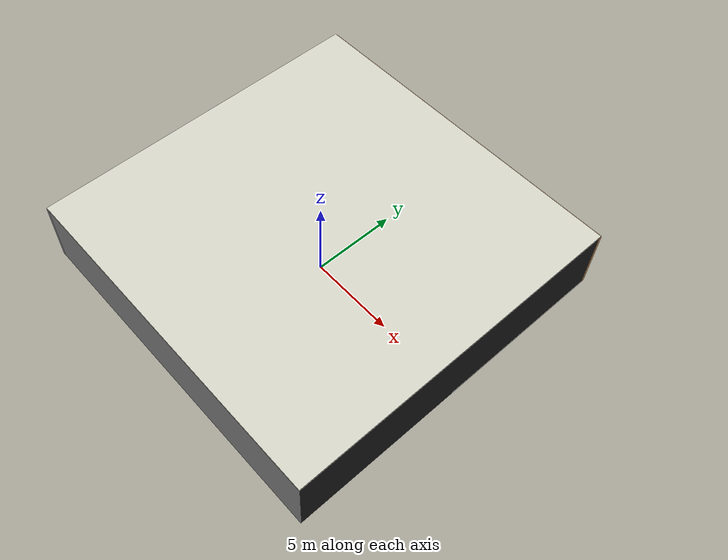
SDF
<sdf version="1.4">
 <world name="default">
  <physics type="ode">
   <max_step_size>0.001</max_step_size>
   <real_time_factor>1</real_time_factor>
   <real_time_update_rate>1000</real_time_update_rate>
   <gravity>0 0 -9.8</gravity>
  </physics>
  <scene><ambient>0.4 0.4 0.4 1</ambient><background>0.7 0.7 0.7 1</background><shadows>1</shadows></scene>
  <model name="Surrounding">
   <static>1</static>
   <link name="Ceiling">
    <collision name="Ceiling_Collision"><geometry><box><size>20 20 0.1</size></box></geometry></collision>
    <visual name="Ceiling_Visual">
     <geometry><box><size>20 20 0.1</size></box></geometry>
     <material>
      <script><uri>file://media/materials/scripts/gazebo.material</uri><name>Gazebo/PaintedWall</name></script>
     </material>
    </visual>
    <pose>0 0 4.05 0 0 0</pose>
   </link>
   <link name="Wall_South">
    <collision name="Wall_South_Collision">
     <geometry><box><size>20 0 4</size></box></geometry>
     <pose>0 0 2 0 -0 0</pose>
    </collision>
    <visual name="Wall_South_Visual">
     <pose>0 0 2 0 -0 0</pose>
     <geometry><box><size>20 0 4</size></box></geometry>
     <material>
      <script><uri>file://media/materials/scripts/gazebo.material</uri><name>Gazebo/Grey</name></script>
     </material>
    </visual>
    <velocity_decay><linear>0</linear><angular>0</angular></velocity_decay>
    <pose>0 -10 0 0 -0 0</pose>
   </link>
   <link name="Wall_East">
    <collision name="Wall_21_Collision">
     <geometry><box><size>20 0 4</size></box></geometry>
     <pose>0 0 2 0 -0 0</pose>
    </collision>
    <visual name="Wall_21_Visual">
     <pose>0 0 2 0 -0 0</pose>
     <geometry><box><size>20 0 4</size></box></geometry>
     <material>
      <script><uri>file://media/materials/scripts/gazebo.material</uri><name>Gazebo/Black</name></script>
     </material>
    </visual>
    <velocity_decay><linear>0</linear><angular>0</angular></velocity_decay>
    <pose>10 0 0 0 -0 1.5708</pose>
   </link>
   <link name="Wall_North">
    <collision name="Wall_22_Collision">
     <geometry><box><size>20 0.2 4</size></box></geometry>
     <pose>0 0 2 0 -0 0</pose>
    </collision>
    <visual name="Wall_22_Visual">
     <pose>0 0 2 0 -0 0</pose>
     <geometry><box><size>20 0.2 4</size></box></geometry>
     <material>
      <script><uri>file://media/materials/scripts/gazebo.material</uri><name>Gazebo/Wood</name></script>
     </material>
    </visual>
    <velocity_decay><linear>0</linear><angular>0</angular></velocity_decay>
    <pose>0 10 0 0 -0 0</pose>
   </link>
   <link name="Wall_West">
    <collision name="Wall_23_Collision">
     <geometry><box><size>20 0.2 4</size></box></geometry>
     <pose>0 0 2 0 -0 0</pose>
    </collision>
    <visual name="Wall_23_Visual">
     <pose>0 0 2 0 -0 0</pose>
     <geometry><box><size>20 0.2 4</size></box></geometry>
     <material>
      <script><uri>file://media/materials/scripts/gazebo.material</uri><name>Gazebo/CloudySky</name></script>
     </material>
    </visual>
    <velocity_decay><linear>0</linear><angular>0</angular></velocity_decay>
    <pose>-10 0 0 0 0 -1.5708</pose>
   </link>
   <link name="Ground_link">
    <collision name="collision">
     <pose>0 0 .05 0 -0 0</pose>
     <geometry><box><size>20 20 0.1</size></box></geometry>
    </collision>
    <visual name="visual">
     <pose>0 0 .05 0 -0 0</pose>
     <geometry><box><size>20 20 0.1</size></box></geometry>
     <material>
      <script><uri>file://media/materials/scripts/gazebo.material</uri><name>Gazebo/WhiteGlow</name></script>
     </material>
    </visual>
   </link>
   <static>1</static>
  </model>
  <spherical_coordinates>
   <surface_model>EARTH_WGS84</surface_model>
   <latitude_deg>0</latitude_deg>
   <longitude_deg>0</longitude_deg>
   <elevation>0</elevation>
   <heading_deg>0</heading_deg>
  </spherical_coordinates>
  <light name="lightball_0" type="diffuse">
   <diffuse>0.8 0.8 0.8 1</diffuse>
   <specular>0.2 0.2 0.2 1</specular>
   <attenuation>
    <range>100</range>
    <constant>0.7</constant>
    <linear>0.01</linear>
    <quadratic>0.001</quadratic>
   </attenuation>
   <direction>-0.5 0.1 -0.9</direction>
   <pose>9.76230772476 -6.5128125291 3.10662071786 0 0 0</pose>
  </light>
  <light name="lightball_1" type="diffuse">
   <diffuse>0.8 0.8 0.8 1</diffuse>
   <specular>0.2 0.2 0.2 1</specular>
   <attenuation>
    <range>100</range>
    <constant>0.7</constant>
    <linear>0.01</linear>
    <quadratic>0.001</quadratic>
   </attenuation>
   <direction>-0.5 0.1 -0.9</direction>
   <pose>-2.87059615191 -8.4118484953 2.14263626594 0 0 0</pose>
  </light>
  <light name="lightball_2" type="diffuse">
   <diffuse>0.8 0.8 0.8 1</diffuse>
   <specular>0.2 0.2 0.2 1</specular>
   <attenuation>
    <range>100</range>
    <constant>0.7</constant>
    <linear>0.01</linear>
    <quadratic>0.001</quadratic>
   </attenuation>
   <direction>-0.5 0.1 -0.9</direction>
   <pose>-8.38495642539 5.77922962794 1.33048477579 0 0 0</pose>
  </light>
  <light name="lightball_3" type="diffuse">
   <diffuse>0.8 0.8 0.8 1</diffuse>
   <specular>0.2 0.2 0.2 1</specular>
   <attenuation>
    <range>100</range>
    <constant>0.7</constant>
    <linear>0.01</linear>
    <quadratic>0.001</quadratic>
   </attenuation>
   <direction>-0.5 0.1 -0.9</direction>
   <pose>-0.769293684458 -4.58864414415 3.06371476783 0 0 0</pose>
  </light>
  <light name="lightball_4" type="diffuse">
   <diffuse>0.8 0.8 0.8 1</diffuse>
   <specular>0.2 0.2 0.2 1</specular>
   <attenuation>
    <range>100</range>
    <constant>0.7</constant>
    <linear>0.01</linear>
    <quadratic>0.001</quadratic>
   </attenuation>
   <direction>-0.5 0.1 -0.9</direction>
   <pose>-8.98619301716 -6.09142293908 2.99226030303 0 0 0</pose>
  </light>
  <light name="lightball_5" type="diffuse">
   <diffuse>0.8 0.8 0.8 1</diffuse>
   <specular>0.2 0.2 0.2 1</specular>
   <attenuation>
    <range>100</range>
    <constant>0.7</constant>
    <linear>0.01</linear>
    <quadratic>0.001</quadratic>
   </attenuation>
   <direction>-0.5 0.1 -0.9</direction>
   <pose>6.28606264016 5.172390381 3.63179261943 0 0 0</pose>
  </light>
  <light name="lightball_6" type="diffuse">
   <diffuse>0.8 0.8 0.8 1</diffuse>
   <specular>0.2 0.2 0.2 1</specular>
   <attenuation>
    <range>100</range>
    <constant>0.7</constant>
    <linear>0.01</linear>
    <quadratic>0.001</quadratic>
   </attenuation>
   <direction>-0.5 0.1 -0.9</direction>
   <pose>-9.87206662865 8.23285771388 2.18911878817 0 0 0</pose>
  </light>
  <light name="lightball_7" type="diffuse">
   <diffuse>0.8 0.8 0.8 1</diffuse>
   <specular>0.2 0.2 0.2 1</specular>
   <attenuation>
    <range>100</range>
    <constant>0.7</constant>
    <linear>0.01</linear>
    <quadratic>0.001</quadratic>
   </attenuation>
   <direction>-0.5 0.1 -0.9</direction>
   <pose>-5.39429683851 -2.72659191756 0.865230548906 0 0 0</pose>
  </light>
  <light name="lightball_8" type="diffuse">
   <diffuse>0.8 0.8 0.8 1</diffuse>
   <specular>0.2 0.2 0.2 1</specular>
   <attenuation>
    <range>100</range>
    <constant>0.7</constant>
    <linear>0.01</linear>
    <quadratic>0.001</quadratic>
   </attenuation>
   <direction>-0.5 0.1 -0.9</direction>
   <pose>-6.38866931833 -0.99157999484 2.50647013045 0 0 0</pose>
  </light>
  <light name="lightball_9" type="diffuse">
   <diffuse>0.8 0.8 0.8 1</diffuse>
   <specular>0.2 0.2 0.2 1</specular>
   <attenuation>
    <range>100</range>
    <constant>0.7</constant>
    <linear>0.01</linear>
    <quadratic>0.001</quadratic>
   </attenuation>
   <direction>-0.5 0.1 -0.9</direction>
   <pose>3.4309597491 8.31868491751 2.74169819379 0 0 0</pose>
  </light>
  <light name="lightball_10" type="diffuse">
   <diffuse>0.8 0.8 0.8 1</diffuse>
   <specular>0.2 0.2 0.2 1</specular>
   <attenuation>
    <range>100</range>
    <constant>0.7</constant>
    <linear>0.01</linear>
    <quadratic>0.001</quadratic>
   </attenuation>
   <direction>-0.5 0.1 -0.9</direction>
   <pose>-6.21589266587 5.61165855451 2.1264742924 0 0 0</pose>
  </light>
  <light name="lightball_11" type="diffuse">
   <diffuse>0.8 0.8 0.8 1</diffuse>
   <specular>0.2 0.2 0.2 1</specular>
   <attenuation>
    <range>100</range>
    <constant>0.7</constant>
    <linear>0.01</linear>
    <quadratic>0.001</quadratic>
   </attenuation>
   <direction>-0.5 0.1 -0.9</direction>
   <pose>0.994721170467 7.52512433041 2.24880208241 0 0 0</pose>
  </light>
  <light name="lightball_12" type="diffuse">
   <diffuse>0.8 0.8 0.8 1</diffuse>
   <specular>0.2 0.2 0.2 1</specular>
   <attenuation>
    <range>100</range>
    <constant>0.7</constant>
    <linear>0.01</linear>
    <quadratic>0.001</quadratic>
   </attenuation>
   <direction>-0.5 0.1 -0.9</direction>
   <pose>-0.526416183924 -4.74872055754 0.938572279836 0 0 0</pose>
  </light>
  <include>
   <uri>model://textured_shapes</uri>
   <pose>-4.88234986875 4.56948820289 0 0 0 0.484578621733</pose>
  </include>
  <include>
   <uri>model://construction_cone</uri>
   <pose>-1.9546711803 -7.31585353763 0 0 0 1.02186563991</pose>
  </include>
  <include>
   <uri>model://robocup_3Dsim_goal</uri>
   <pose>-1.37685530456 2.29667795189 0 0 0 0.183871693505</pose>
  </include>
  <include><uri>model://table</uri><pose>2.26676026184 -4.13873413531 0 0 0 1.12476911644</pose></include>
 </world>
</sdf>

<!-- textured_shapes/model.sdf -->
<sdf version="1.6">
  <model name="textured_shapes">
    <pose>0 0 0.5 0 0 0</pose>
    <link name="box">
      <pose>0 -1.5 0 0 0 0</pose>
      <collision name="collision">
        <geometry>
          <box>
            <size>1 1 1</size>
          </box>
        </geometry>
      </collision>
      <visual name="visual">
        <geometry>
          <box>
            <size>1 1 1</size>
          </box>
        </geometry>
        <material>
          <script>
            <uri>model://../model_source/models/textured_shapes/materials/scripts</uri>
            <uri>model://../model_source/models/textured_shapes/materials/textures</uri>
            <name>TexturedShape/Squares</name>
          </script>
        </material>
      </visual>
    </link>
    <link name="sphere">
      <collision name="collision">
        <geometry>
          <sphere>
            <radius>0.5</radius>
          </sphere>
        </geometry>
      </collision>
      <visual name="visual">
        <geometry>
          <sphere>
            <radius>0.5</radius>
          </sphere>
        </geometry>
        <material>
          <script>
            <uri>model://../model_source/models/textured_shapes/materials/scripts</uri>
            <uri>model://../model_source/models/textured_shapes/materials/textures</uri>
            <name>TexturedShape/Squares</name>
          </script>
        </material>
      </visual>
    </link>
    <link name="cylinder">
      <pose>0 1.5 0 0 0 0</pose>
      <collision name="collision">
        <geometry>
          <cylinder>
            <radius>0.5</radius>
            <length>1</length>
          </cylinder>
        </geometry>
      </collision>
      <visual name="visual">
        <geometry>
          <cylinder>
            <radius>0.5</radius>
            <length>1</length>
          </cylinder>
        </geometry>
        <material>
          <script>
            <uri>model://../model_source/models/textured_shapes/materials/scripts</uri>
            <uri>model://../model_source/models/textured_shapes/materials/textures</uri>
            <name>TexturedShape/Squares</name>
          </script>
        </material>
      </visual>
    </link>
  </model>
</sdf>

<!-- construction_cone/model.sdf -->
<sdf version="1.5">
  <model name="Construction Cone">
    <link name="link">
      <collision name="collision">
        <geometry>
          <mesh>
            <scale>10 10 10</scale>
            <uri>file://isr-testbed/construction_cone/meshes/construction_cone.dae</uri>
          </mesh>
        </geometry>
      </collision>
      <visual name="visual">
        <geometry>
          <mesh>
            <scale>10 10 10</scale>
            <uri>file://isr-testbed/construction_cone/meshes/construction_cone.dae</uri>
          </mesh>
        </geometry>
      </visual>
    </link>
  </model>
</sdf>

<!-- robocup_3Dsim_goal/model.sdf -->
<sdf version="1.5">
  <model name="robocup_3d_goal">
    <static>true</static>
    <link name="left_post">
      <pose>0 1.05 0.45 0 0 0</pose>
      <collision name="collision">
        <geometry>
          <cylinder>
            <radius>0.05</radius>
            <length>0.9</length>
          </cylinder>
        </geometry>
      </collision>
      <visual name="visual">
        <geometry>
          <cylinder>
            <radius>0.05</radius>
            <length>0.9</length>
          </cylinder>
        </geometry>
        <material>
          <script>
            <uri>file://media/materials/scripts/gazebo.material</uri>
            <name>Gazebo/ZincYellow</name>
          </script>
        </material>
      </visual>
    </link>
    <link name="left_support_horiz_lower">
      <pose>0.30 1.05 0.01 0 0 0</pose>
      <collision name="collision">
        <geometry>
          <box>
            <size>0.50 0.02 0.02</size>
          </box>
        </geometry>
      </collision>
      <visual name="visual">
        <geometry>
          <box>
            <size>0.50 0.02 0.02</size>
          </box>
        </geometry>
        <material>
          <script>
            <uri>file://media/materials/scripts/gazebo.material</uri>
            <name>Gazebo/White</name>
          </script>
        </material>
      </visual>
    </link>
    <link name="left_support_horiz_upper">
      <pose>0.30 1.05 0.79 0 0 0</pose>
      <collision name="collision">
        <geometry>
          <box>
            <size>0.50 0.02 0.02</size>
          </box>
        </geometry>
      </collision>
      <visual name="visual">
        <geometry>
          <box>
            <size>0.50 0.02 0.02</size>
          </box>
        </geometry>
        <material>
          <script>
            <uri>file://media/materials/scripts/gazebo.material</uri>
            <name>Gazebo/White</name>
          </script>
        </material>
      </visual>
    </link>
    <link name="left_support_vertical">
      <pose>0.56 1.05 0.4 0 1.5708 0</pose>
      <collision name="collision">
        <geometry>
          <box>
            <size>0.80 0.02 0.02</size>
          </box>
        </geometry>
      </collision>
      <visual name="visual">
        <geometry>
          <box>
            <size>0.80 0.02 0.02</size>
          </box>
        </geometry>
        <material>
          <script>
            <uri>file://media/materials/scripts/gazebo.material</uri>
            <name>Gazebo/White</name>
          </script>
        </material>
      </visual>
    </link>
    <link name="right_support_horiz_lower">
      <pose>0.30 -1.05 0.01 0 0 0</pose>
      <collision name="collision">
        <geometry>
          <box>
            <size>0.50 0.02 0.02</size>
          </box>
        </geometry>
      </collision>
      <visual name="visual">
        <geometry>
          <box>
            <size>0.50 0.02 0.02</size>
          </box>
        </geometry>
        <material>
          <script>
            <uri>file://media/materials/scripts/gazebo.material</uri>
            <name>Gazebo/White</name>
          </script>
        </material>
      </visual>
    </link>
    <link name="right_support_horiz_upper">
      <pose>0.30 -1.05 0.79 0 0 0</pose>
      <collision name="collision">
        <geometry>
          <box>
            <size>0.50 0.02 0.02</size>
          </box>
        </geometry>
      </collision>
      <visual name="visual">
        <geometry>
          <box>
            <size>0.50 0.02 0.02</size>
          </box>
        </geometry>
        <material>
          <script>
            <uri>file://media/materials/scripts/gazebo.material</uri>
            <name>Gazebo/White</name>
          </script>
        </material>
      </visual>
    </link>
    <link name="right_support_vertical">
      <pose>0.56 -1.05 0.4 0 1.5708 0</pose>
      <collision name="collision">
        <geometry>
          <box>
            <size>0.80 0.02 0.02</size>
          </box>
        </geometry>
      </collision>
      <visual name="visual">
        <geometry>
          <box>
            <size>0.80 0.02 0.02</size>
          </box>
        </geometry>
        <material>
          <script>
            <uri>file://media/materials/scripts/gazebo.material</uri>
            <name>Gazebo/White</name>
          </script>
        </material>
      </visual>
    </link>
    <link name="center_support_horiz_lower">
      <pose>0.56 0 0.01 0 1.5708 0</pose>
      <collision name="collision">
        <geometry>
          <box>
            <size>0.02 2.08 0.02</size>
          </box>
        </geometry>
      </collision>
      <visual name="visual">
        <geometry>
          <box>
            <size>0.02 2.08 0.02</size>
          </box>
        </geometry>
        <material>
          <script>
            <uri>file://media/materials/scripts/gazebo.material</uri>
            <name>Gazebo/White</name>
          </script>
        </material>
      </visual>
    </link>
    <link name="center_support_horiz_upper">
      <pose>0.56 0 0.79 0 1.5708 0</pose>
      <collision name="collision">
        <geometry>
          <box>
            <size>0.02 2.08 0.02</size>
          </box>
        </geometry>
      </collision>
      <visual name="visual">
        <geometry>
          <box>
            <size>0.02 2.08 0.02</size>
          </box>
        </geometry>
        <material>
          <script>
            <uri>file://media/materials/scripts/gazebo.material</uri>
            <name>Gazebo/White</name>
          </script>
        </material>
      </visual>
    </link>
    <link name="right_post">
      <pose>0 -1.05 0.45 0 0 0</pose>
      <collision name="collision">
        <geometry>
          <cylinder>
            <radius>0.05</radius>
            <length>0.9</length>
          </cylinder>
        </geometry>
      </collision>
      <visual name="visual">
        <geometry>
          <cylinder>
            <radius>0.05</radius>
            <length>0.9</length>
          </cylinder>
        </geometry>
        <material>
          <script>
            <uri>file://media/materials/scripts/gazebo.material</uri>
            <name>Gazebo/ZincYellow</name>
          </script>
        </material>
      </visual>
    </link>
    <link name="crossbar">
      <pose>0 0 0.85 1.57 1.57 0</pose>
      <collision name="collision">
        <geometry>
          <cylinder>
            <radius>0.05</radius>
            <length>2.0</length>
          </cylinder>
        </geometry>
      </collision>
      <visual name="visual">
        <geometry>
          <cylinder>
            <radius>0.05</radius>
            <length>2.0</length>
          </cylinder>
        </geometry>
        <material>
          <script>
            <uri>file://media/materials/scripts/gazebo.material</uri>
            <name>Gazebo/ZincYellow</name>
          </script>
        </material>
      </visual>
    </link>
    <link name="center_net">
      <pose>0.56 0 0.40 0 0 0</pose>
      <collision name="collision">
        <geometry>
          <box>
            <size>0.01 2.1 0.80</size>
          </box>
        </geometry>
      </collision>
      <visual name="visual">
        <geometry>
          <box>
            <size>0.01 2.1 0.80</size>
          </box>
        </geometry>
        <material>
          <script>
            <uri>model://../model_source/models/robocup09_spl_field/materials/scripts/</uri>
            <uri>model://../model_source/models/robocup09_spl_field/materials/textures/</uri>
            <name>RoboCup/Net</name>
          </script>
        </material>
      </visual>
    </link>
    <link name="left_net">
      <pose>0.30 1.05 0.40 0 0 0</pose>
      <collision name="collision">
        <geometry>
          <box>
            <size>0.50 0.01 0.76</size>
          </box>
        </geometry>
      </collision>
      <visual name="visual">
        <geometry>
          <box>
            <size>0.50 0.01 0.76</size>
          </box>
        </geometry>
        <material>
          <script>
            <uri>model://../model_source/models/robocup09_spl_field/materials/scripts/</uri>
            <uri>model://../model_source/models/robocup09_spl_field/materials/textures/</uri>
            <name>RoboCup/Net</name>
          </script>
        </material>
      </visual>
    </link>
    <link name="right_net">
      <pose>0.30 -1.05 0.40 0 0 0</pose>
      <collision name="collision">
        <geometry>
          <box>
            <size>0.50 0.01 0.76</size>
          </box>
        </geometry>
      </collision>
      <visual name="visual">
        <geometry>
          <box>
            <size>0.50 0.01 0.76</size>
          </box>
        </geometry>
        <material>
          <script>
            <uri>model://../model_source/models/robocup09_spl_field/materials/scripts/</uri>
            <uri>model://../model_source/models/robocup09_spl_field/materials/textures/</uri>
            <name>RoboCup/Net</name>
          </script>
        </material>
      </visual>
    </link>
  </model>
</sdf>

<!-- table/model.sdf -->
<sdf version="1.5">
  <model name="table">
    <static>true</static>
    <link name="link">
      <collision name="surface">
        <pose>0 0 1.0 0 0 0</pose>
        <geometry>
          <box>
            <size>1.5 0.8 0.03</size>
          </box>
        </geometry>
        <surface>
          <friction>
            <ode>
              <mu>0.6</mu>
              <mu2>0.6</mu2>
            </ode>
          </friction>
        </surface>
      </collision>
      <visual name="visual1">
        <pose>0 0 1.0 0 0 0</pose>
        <geometry>
          <box>
            <size>1.5 0.8 0.03</size>
          </box>
        </geometry>
        <material>
          <script>
            <uri>model://media/materials/scripts/gazebo.material</uri>
            <name>Gazebo/Wood</name>
          </script>
        </material>
      </visual>
      <collision name="front_left_leg">
        <pose>0.68 0.38 0.5 0 0 0</pose>
        <geometry>
          <cylinder>
            <radius>0.02</radius>
            <length>1.0</length>
          </cylinder>
        </geometry>
      </collision>
      <visual name="front_left_leg">
        <pose>0.68 0.38 0.5 0 0 0</pose>
        <geometry>
          <cylinder>
            <radius>0.02</radius>
            <length>1.0</length>
          </cylinder>
        </geometry>
        <material>
          <script>
            <uri>model://media/materials/scripts/gazebo.material</uri>
            <name>Gazebo/Grey</name>
          </script>
        </material>
      </visual>
      <collision name="front_right_leg">
        <pose>0.68 -0.38 0.5 0 0 0</pose>
        <geometry>
          <cylinder>
            <radius>0.02</radius>
            <length>1.0</length>
          </cylinder>
        </geometry>
      </collision>
      <visual name="front_right_leg">
        <pose>0.68 -0.38 0.5 0 0 0</pose>
        <geometry>
          <cylinder>
            <radius>0.02</radius>
            <length>1.0</length>
          </cylinder>
        </geometry>
        <material>
          <script>
            <uri>model://media/materials/scripts/gazebo.material</uri>
            <name>Gazebo/Grey</name>
          </script>
        </material>
      </visual>
      <collision name="back_right_leg">
        <pose>-0.68 -0.38 0.5 0 0 0</pose>
        <geometry>
          <cylinder>
            <radius>0.02</radius>
            <length>1.0</length>
          </cylinder>
        </geometry>
      </collision>
      <visual name="back_right_leg">
        <pose>-0.68 -0.38 0.5 0 0 0</pose>
        <geometry>
          <cylinder>
            <radius>0.02</radius>
            <length>1.0</length>
          </cylinder>
        </geometry>
        <material>
          <script>
            <uri>model://media/materials/scripts/gazebo.material</uri>
            <name>Gazebo/Grey</name>
          </script>
        </material>
      </visual>
      <collision name="back_left_leg">
        <pose>-0.68 0.38 0.5 0 0 0</pose>
        <geometry>
          <cylinder>
            <radius>0.02</radius>
            <length>1.0</length>
          </cylinder>
        </geometry>
      </collision>
      <visual name="back_left_leg">
        <pose>-0.68 0.38 0.5 0 0 0</pose>
        <geometry>
          <cylinder>
            <radius>0.02</radius>
            <length>1.0</length>
          </cylinder>
        </geometry>
        <material>
          <script>
            <uri>model://media/materials/scripts/gazebo.material</uri>
            <name>Gazebo/Grey</name>
          </script>
        </material>
      </visual>
    </link>
  </model>
</sdf>
